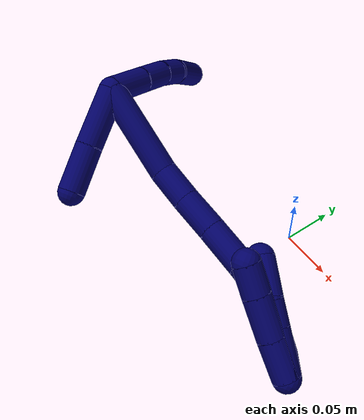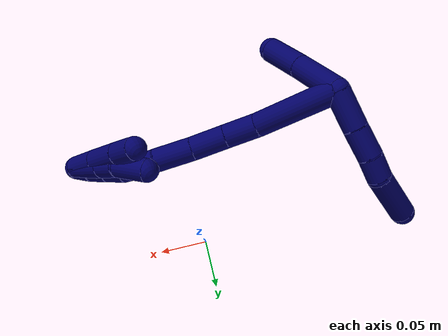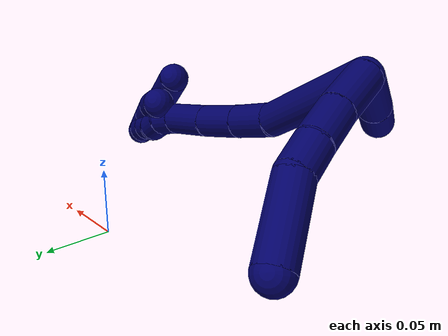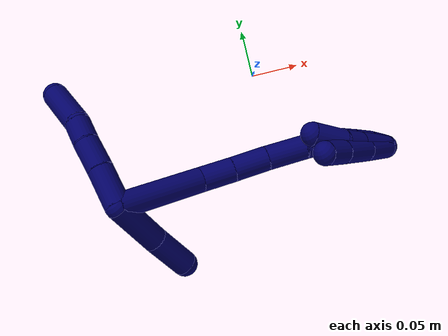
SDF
<sdf version="1.7">
 <world name="default">
  <model name="7">
   <static>0</static>
   <link name="7">
    <collision name="collision-cylinder-e_1_2_8">
     <pose>0.004269 0.014774 0.012706 -0.86051 0.215649 -0.099272</pose>
     <geometry><cylinder><radius>0.0125</radius><length>0.039898</length></cylinder></geometry>
     <surface>
      <friction><ode><mu>1.16</mu><mu2>1.16</mu2><slip1>0</slip1><slip2>0</slip2></ode></friction>
      <contact><ode><kp>1e+06</kp><kd>1</kd><max_vel>0</max_vel><min_depth>0.001</min_depth></ode></contact>
     </surface>
    </collision>
    <visual name="visual-cylinder-e_1_2_8">
     <pose>0.004269 0.014774 0.012706 -0.86051 0.215649 -0.099272</pose>
     <geometry><cylinder><radius>0.0125</radius><length>0.039898</length></cylinder></geometry>
     <material><ambient>0.003922 0 0.403922 1</ambient></material>
    </visual>
    <collision name="collision-cylinder-e_2_8_9">
     <pose>0.011179 0.041626 0.035018 -0.89891 0.169563 -0.081945</pose>
     <geometry><cylinder><radius>0.0125</radius><length>0.031312</length></cylinder></geometry>
     <surface>
      <friction><ode><mu>1.16</mu><mu2>1.16</mu2><slip1>0</slip1><slip2>0</slip2></ode></friction>
      <contact><ode><kp>1e+06</kp><kd>1</kd><max_vel>0</max_vel><min_depth>0.001</min_depth></ode></contact>
     </surface>
    </collision>
    <visual name="visual-cylinder-e_2_8_9">
     <pose>0.011179 0.041626 0.035018 -0.89891 0.169563 -0.081945</pose>
     <geometry><cylinder><radius>0.0125</radius><length>0.031312</length></cylinder></geometry>
     <material><ambient>0.003922 0 0.403922 1</ambient></material>
    </visual>
    <collision name="collision-cylinder-e_3_9_10">
     <pose>0.016129 0.06395 0.050895 -1.02158 0.189796 -0.106581</pose>
     <geometry><cylinder><radius>0.0125</radius><length>0.024463</length></cylinder></geometry>
     <surface>
      <friction><ode><mu>1.16</mu><mu2>1.16</mu2><slip1>0</slip1><slip2>0</slip2></ode></friction>
      <contact><ode><kp>1e+06</kp><kd>1</kd><max_vel>0</max_vel><min_depth>0.001</min_depth></ode></contact>
     </surface>
    </collision>
    <visual name="visual-cylinder-e_3_9_10">
     <pose>0.016129 0.06395 0.050895 -1.02158 0.189796 -0.106581</pose>
     <geometry><cylinder><radius>0.0125</radius><length>0.024463</length></cylinder></geometry>
     <material><ambient>0.003922 0 0.403922 1</ambient></material>
    </visual>
    <collision name="collision-cylinder-e_4_10_6">
     <pose>0.017147 0.099815 0.066099 -1.23525 -0.047501 0.033745</pose>
     <geometry><cylinder><radius>0.0125</radius><length>0.054326</length></cylinder></geometry>
     <surface>
      <friction><ode><mu>1.16</mu><mu2>1.16</mu2><slip1>0</slip1><slip2>0</slip2></ode></friction>
      <contact><ode><kp>1e+06</kp><kd>1</kd><max_vel>0</max_vel><min_depth>0.001</min_depth></ode></contact>
     </surface>
    </collision>
    <visual name="visual-cylinder-e_4_10_6">
     <pose>0.017147 0.099815 0.066099 -1.23525 -0.047501 0.033745</pose>
     <geometry><cylinder><radius>0.0125</radius><length>0.054326</length></cylinder></geometry>
     <material><ambient>0.003922 0 0.403922 1</ambient></material>
    </visual>
    <collision name="collision-cylinder-e_1_2_11">
     <pose>0.000121 0.00158 -0.027673 -3.08457 0.004356 -0.152438</pose>
     <geometry><cylinder><radius>0.0125</radius><length>0.055437</length></cylinder></geometry>
     <surface>
      <friction><ode><mu>1.16</mu><mu2>1.16</mu2><slip1>0</slip1><slip2>0</slip2></ode></friction>
      <contact><ode><kp>1e+06</kp><kd>1</kd><max_vel>0</max_vel><min_depth>0.001</min_depth></ode></contact>
     </surface>
    </collision>
    <visual name="visual-cylinder-e_1_2_11">
     <pose>0.000121 0.00158 -0.027673 -3.08457 0.004356 -0.152438</pose>
     <geometry><cylinder><radius>0.0125</radius><length>0.055437</length></cylinder></geometry>
     <material><ambient>0.003922 0 0.403922 1</ambient></material>
    </visual>
    <collision name="collision-cylinder-e_2_11_5">
     <pose>0.001509 0.003289 -0.077591 -3.13576 0.05691 -2.93748</pose>
     <geometry><cylinder><radius>0.0125</radius><length>0.044563</length></cylinder></geometry>
     <surface>
      <friction><ode><mu>1.16</mu><mu2>1.16</mu2><slip1>0</slip1><slip2>0</slip2></ode></friction>
      <contact><ode><kp>1e+06</kp><kd>1</kd><max_vel>0</max_vel><min_depth>0.001</min_depth></ode></contact>
     </surface>
    </collision>
    <visual name="visual-cylinder-e_2_11_5">
     <pose>0.001509 0.003289 -0.077591 -3.13576 0.05691 -2.93748</pose>
     <geometry><cylinder><radius>0.0125</radius><length>0.044563</length></cylinder></geometry>
     <material><ambient>0.003922 0 0.403922 1</ambient></material>
    </visual>
    <collision name="collision-cylinder-e_1_2_12">
     <pose>0.034805 0.01082 -0.025167 -2.73556 0.903994 -2.33958</pose>
     <geometry><cylinder><radius>0.0125</radius><length>0.088584</length></cylinder></geometry>
     <surface>
      <friction><ode><mu>1.16</mu><mu2>1.16</mu2><slip1>0</slip1><slip2>0</slip2></ode></friction>
      <contact><ode><kp>1e+06</kp><kd>1</kd><max_vel>0</max_vel><min_depth>0.001</min_depth></ode></contact>
     </surface>
    </collision>
    <visual name="visual-cylinder-e_1_2_12">
     <pose>0.034805 0.01082 -0.025167 -2.73556 0.903994 -2.33958</pose>
     <geometry><cylinder><radius>0.0125</radius><length>0.088584</length></cylinder></geometry>
     <material><ambient>0.003922 0 0.403922 1</ambient></material>
    </visual>
    <collision name="collision-cylinder-e_2_12_13">
     <pose>0.084677 0.02173 -0.058402 -3.13034 1.07908 -3.12279</pose>
     <geometry><cylinder><radius>0.0125</radius><length>0.034184</length></cylinder></geometry>
     <surface>
      <friction><ode><mu>1.16</mu><mu2>1.16</mu2><slip1>0</slip1><slip2>0</slip2></ode></friction>
      <contact><ode><kp>1e+06</kp><kd>1</kd><max_vel>0</max_vel><min_depth>0.001</min_depth></ode></contact>
     </surface>
    </collision>
    <visual name="visual-cylinder-e_2_12_13">
     <pose>0.084677 0.02173 -0.058402 -3.13034 1.07908 -3.12279</pose>
     <geometry><cylinder><radius>0.0125</radius><length>0.034184</length></cylinder></geometry>
     <material><ambient>0.003922 0 0.403922 1</ambient></material>
    </visual>
    <collision name="collision-cylinder-e_3_13_14">
     <pose>0.116078 0.02129 -0.074438 3.07504 1.11613 3.03505</pose>
     <geometry><cylinder><radius>0.0125</radius><length>0.036363</length></cylinder></geometry>
     <surface>
      <friction><ode><mu>1.16</mu><mu2>1.16</mu2><slip1>0</slip1><slip2>0</slip2></ode></friction>
      <contact><ode><kp>1e+06</kp><kd>1</kd><max_vel>0</max_vel><min_depth>0.001</min_depth></ode></contact>
     </surface>
    </collision>
    <visual name="visual-cylinder-e_3_13_14">
     <pose>0.116078 0.02129 -0.074438 3.07504 1.11613 3.03505</pose>
     <geometry><cylinder><radius>0.0125</radius><length>0.036363</length></cylinder></geometry>
     <material><ambient>0.003922 0 0.403922 1</ambient></material>
    </visual>
    <collision name="collision-cylinder-e_4_14_15">
     <pose>0.150505 0.019239 -0.091564 2.97717 1.0967 2.87342</pose>
     <geometry><cylinder><radius>0.0125</radius><length>0.040673</length></cylinder></geometry>
     <surface>
      <friction><ode><mu>1.16</mu><mu2>1.16</mu2><slip1>0</slip1><slip2>0</slip2></ode></friction>
      <contact><ode><kp>1e+06</kp><kd>1</kd><max_vel>0</max_vel><min_depth>0.001</min_depth></ode></contact>
     </surface>
    </collision>
    <visual name="visual-cylinder-e_4_14_15">
     <pose>0.150505 0.019239 -0.091564 2.97717 1.0967 2.87342</pose>
     <geometry><cylinder><radius>0.0125</radius><length>0.040673</length></cylinder></geometry>
     <material><ambient>0.003922 0 0.403922 1</ambient></material>
    </visual>
    <collision name="collision-cylinder-e_5_15_16">
     <pose>0.177401 0.018031 -0.105591 -3.07763 1.06474 -3.03309</pose>
     <geometry><cylinder><radius>0.0125</radius><length>0.020127</length></cylinder></geometry>
     <surface>
      <friction><ode><mu>1.16</mu><mu2>1.16</mu2><slip1>0</slip1><slip2>0</slip2></ode></friction>
      <contact><ode><kp>1e+06</kp><kd>1</kd><max_vel>0</max_vel><min_depth>0.001</min_depth></ode></contact>
     </surface>
    </collision>
    <visual name="visual-cylinder-e_5_15_16">
     <pose>0.177401 0.018031 -0.105591 -3.07763 1.06474 -3.03309</pose>
     <geometry><cylinder><radius>0.0125</radius><length>0.020127</length></cylinder></geometry>
     <material><ambient>0.003922 0 0.403922 1</ambient></material>
    </visual>
    <collision name="collision-cylinder-e_6_16_17">
     <pose>0.193309 0.020334 -0.117251 -2.85636 0.787411 -2.47595</pose>
     <geometry><cylinder><radius>0.0125</radius><length>0.020058</length></cylinder></geometry>
     <surface>
      <friction><ode><mu>1.16</mu><mu2>1.16</mu2><slip1>0</slip1><slip2>0</slip2></ode></friction>
      <contact><ode><kp>1e+06</kp><kd>1</kd><max_vel>0</max_vel><min_depth>0.001</min_depth></ode></contact>
     </surface>
    </collision>
    <visual name="visual-cylinder-e_6_16_17">
     <pose>0.193309 0.020334 -0.117251 -2.85636 0.787411 -2.47595</pose>
     <geometry><cylinder><radius>0.0125</radius><length>0.020058</length></cylinder></geometry>
     <material><ambient>0.003922 0 0.403922 1</ambient></material>
    </visual>
    <collision name="collision-cylinder-e_7_17_18">
     <pose>0.207151 0.020997 -0.131318 2.96094 0.738728 2.68193</pose>
     <geometry><cylinder><radius>0.0125</radius><length>0.020009</length></cylinder></geometry>
     <surface>
      <friction><ode><mu>1.16</mu><mu2>1.16</mu2><slip1>0</slip1><slip2>0</slip2></ode></friction>
      <contact><ode><kp>1e+06</kp><kd>1</kd><max_vel>0</max_vel><min_depth>0.001</min_depth></ode></contact>
     </surface>
    </collision>
    <visual name="visual-cylinder-e_7_17_18">
     <pose>0.207151 0.020997 -0.131318 2.96094 0.738728 2.68193</pose>
     <geometry><cylinder><radius>0.0125</radius><length>0.020009</length></cylinder></geometry>
     <material><ambient>0.003922 0 0.403922 1</ambient></material>
    </visual>
    <collision name="collision-cylinder-e_8_18_19">
     <pose>0.22022 0.019528 -0.146332 3.12357 0.685846 3.09112</pose>
     <geometry><cylinder><radius>0.0125</radius><length>0.02</length></cylinder></geometry>
     <surface>
      <friction><ode><mu>1.16</mu><mu2>1.16</mu2><slip1>0</slip1><slip2>0</slip2></ode></friction>
      <contact><ode><kp>1e+06</kp><kd>1</kd><max_vel>0</max_vel><min_depth>0.001</min_depth></ode></contact>
     </surface>
    </collision>
    <visual name="visual-cylinder-e_8_18_19">
     <pose>0.22022 0.019528 -0.146332 3.12357 0.685846 3.09112</pose>
     <geometry><cylinder><radius>0.0125</radius><length>0.02</length></cylinder></geometry>
     <material><ambient>0.003922 0 0.403922 1</ambient></material>
    </visual>
    <collision name="collision-cylinder-e_9_19_1">
     <pose>0.231942 0.018942 -0.162483 3.08854 0.568986 2.96064</pose>
     <geometry><cylinder><radius>0.0125</radius><length>0.020003</length></cylinder></geometry>
     <surface>
      <friction><ode><mu>1.16</mu><mu2>1.16</mu2><slip1>0</slip1><slip2>0</slip2></ode></friction>
      <contact><ode><kp>1e+06</kp><kd>1</kd><max_vel>0</max_vel><min_depth>0.001</min_depth></ode></contact>
     </surface>
    </collision>
    <visual name="visual-cylinder-e_9_19_1">
     <pose>0.231942 0.018942 -0.162483 3.08854 0.568986 2.96064</pose>
     <geometry><cylinder><radius>0.0125</radius><length>0.020003</length></cylinder></geometry>
     <material><ambient>0.003922 0 0.403922 1</ambient></material>
    </visual>
    <collision name="collision-cylinder-e_1_1_20">
     <pose>0.226342 0.012426 -0.15837 0.451187 -0.668265 -0.159006</pose>
     <geometry><cylinder><radius>0.0125</radius><length>0.03547</length></cylinder></geometry>
     <surface>
      <friction><ode><mu>1.16</mu><mu2>1.16</mu2><slip1>0</slip1><slip2>0</slip2></ode></friction>
      <contact><ode><kp>1e+06</kp><kd>1</kd><max_vel>0</max_vel><min_depth>0.001</min_depth></ode></contact>
     </surface>
    </collision>
    <visual name="visual-cylinder-e_1_1_20">
     <pose>0.226342 0.012426 -0.15837 0.451187 -0.668265 -0.159006</pose>
     <geometry><cylinder><radius>0.0125</radius><length>0.03547</length></cylinder></geometry>
     <material><ambient>0.003922 0 0.403922 1</ambient></material>
    </visual>
    <collision name="collision-cylinder-e_2_20_21">
     <pose>0.204209 -0.000213 -0.132269 0.450715 -0.636394 -0.15074</pose>
     <geometry><cylinder><radius>0.0125</radius><length>0.037502</length></cylinder></geometry>
     <surface>
      <friction><ode><mu>1.16</mu><mu2>1.16</mu2><slip1>0</slip1><slip2>0</slip2></ode></friction>
      <contact><ode><kp>1e+06</kp><kd>1</kd><max_vel>0</max_vel><min_depth>0.001</min_depth></ode></contact>
     </surface>
    </collision>
    <visual name="visual-cylinder-e_2_20_21">
     <pose>0.204209 -0.000213 -0.132269 0.450715 -0.636394 -0.15074</pose>
     <geometry><cylinder><radius>0.0125</radius><length>0.037502</length></cylinder></geometry>
     <material><ambient>0.003922 0 0.403922 1</ambient></material>
    </visual>
    <collision name="collision-cylinder-e_3_21_4">
     <pose>0.185224 -0.011489 -0.108746 0.44193 -0.619071 -0.143436</pose>
     <geometry><cylinder><radius>0.0125</radius><length>0.027028</length></cylinder></geometry>
     <surface>
      <friction><ode><mu>1.16</mu><mu2>1.16</mu2><slip1>0</slip1><slip2>0</slip2></ode></friction>
      <contact><ode><kp>1e+06</kp><kd>1</kd><max_vel>0</max_vel><min_depth>0.001</min_depth></ode></contact>
     </surface>
    </collision>
    <visual name="visual-cylinder-e_3_21_4">
     <pose>0.185224 -0.011489 -0.108746 0.44193 -0.619071 -0.143436</pose>
     <geometry><cylinder><radius>0.0125</radius><length>0.027028</length></cylinder></geometry>
     <material><ambient>0.003922 0 0.403922 1</ambient></material>
    </visual>
    <collision name="collision-cylinder-e_1_1_22">
     <pose>0.225938 0.013993 -0.154033 0.260862 -0.578276 -0.078003</pose>
     <geometry><cylinder><radius>0.0125</radius><length>0.041687</length></cylinder></geometry>
     <surface>
      <friction><ode><mu>1.16</mu><mu2>1.16</mu2><slip1>0</slip1><slip2>0</slip2></ode></friction>
      <contact><ode><kp>1e+06</kp><kd>1</kd><max_vel>0</max_vel><min_depth>0.001</min_depth></ode></contact>
     </surface>
    </collision>
    <visual name="visual-cylinder-e_1_1_22">
     <pose>0.225938 0.013993 -0.154033 0.260862 -0.578276 -0.078003</pose>
     <geometry><cylinder><radius>0.0125</radius><length>0.041687</length></cylinder></geometry>
     <material><ambient>0.003922 0 0.403922 1</ambient></material>
    </visual>
    <collision name="collision-cylinder-e_2_22_23">
     <pose>0.20813 0.007014 -0.1277 0.255901 -0.580243 -0.07678</pose>
     <geometry><cylinder><radius>0.0125</radius><length>0.023406</length></cylinder></geometry>
     <surface>
      <friction><ode><mu>1.16</mu><mu2>1.16</mu2><slip1>0</slip1><slip2>0</slip2></ode></friction>
      <contact><ode><kp>1e+06</kp><kd>1</kd><max_vel>0</max_vel><min_depth>0.001</min_depth></ode></contact>
     </surface>
    </collision>
    <visual name="visual-cylinder-e_2_22_23">
     <pose>0.20813 0.007014 -0.1277 0.255901 -0.580243 -0.07678</pose>
     <geometry><cylinder><radius>0.0125</radius><length>0.023406</length></cylinder></geometry>
     <material><ambient>0.003922 0 0.403922 1</ambient></material>
    </visual>
    <collision name="collision-cylinder-e_3_23_3">
     <pose>0.192003 0.006531 -0.103867 -0.137967 -0.590006 0.041984</pose>
     <geometry><cylinder><radius>0.0125</radius><length>0.034907</length></cylinder></geometry>
     <surface>
      <friction><ode><mu>1.16</mu><mu2>1.16</mu2><slip1>0</slip1><slip2>0</slip2></ode></friction>
      <contact><ode><kp>1e+06</kp><kd>1</kd><max_vel>0</max_vel><min_depth>0.001</min_depth></ode></contact>
     </surface>
    </collision>
    <visual name="visual-cylinder-e_3_23_3">
     <pose>0.192003 0.006531 -0.103867 -0.137967 -0.590006 0.041984</pose>
     <geometry><cylinder><radius>0.0125</radius><length>0.034907</length></cylinder></geometry>
     <material><ambient>0.003922 0 0.403922 1</ambient></material>
    </visual>
    <collision name="collision-sphere-3">
     <pose>0.182293 0.008526 -0.089502 0 -0 0</pose>
     <geometry><sphere><radius>0.0125</radius></sphere></geometry>
     <surface>
      <friction><ode><mu>1.16</mu><mu2>1.16</mu2><slip1>0</slip1><slip2>0</slip2></ode></friction>
      <contact><ode><kp>1e+06</kp><kd>1</kd><max_vel>0</max_vel><min_depth>0.001</min_depth></ode></contact>
     </surface>
    </collision>
    <visual name="visual-sphere-3">
     <pose>0.182293 0.008526 -0.089502 0 -0 0</pose>
     <geometry><sphere><radius>0.0125</radius></sphere></geometry>
     <material><ambient>0.003922 0 0.403922 1</ambient></material>
    </visual>
    <collision name="collision-sphere-23">
     <pose>0.201714 0.004537 -0.118232 0 -0 0</pose>
     <geometry><sphere><radius>0.0125</radius></sphere></geometry>
     <surface>
      <friction><ode><mu>1.16</mu><mu2>1.16</mu2><slip1>0</slip1><slip2>0</slip2></ode></friction>
      <contact><ode><kp>1e+06</kp><kd>1</kd><max_vel>0</max_vel><min_depth>0.001</min_depth></ode></contact>
     </surface>
    </collision>
    <visual name="visual-sphere-23">
     <pose>0.201714 0.004537 -0.118232 0 -0 0</pose>
     <geometry><sphere><radius>0.0125</radius></sphere></geometry>
     <material><ambient>0.003922 0 0.403922 1</ambient></material>
    </visual>
    <collision name="collision-sphere-22">
     <pose>0.214546 0.009492 -0.137169 0 -0 0</pose>
     <geometry><sphere><radius>0.0125</radius></sphere></geometry>
     <surface>
      <friction><ode><mu>1.16</mu><mu2>1.16</mu2><slip1>0</slip1><slip2>0</slip2></ode></friction>
      <contact><ode><kp>1e+06</kp><kd>1</kd><max_vel>0</max_vel><min_depth>0.001</min_depth></ode></contact>
     </surface>
    </collision>
    <visual name="visual-sphere-22">
     <pose>0.214546 0.009492 -0.137169 0 -0 0</pose>
     <geometry><sphere><radius>0.0125</radius></sphere></geometry>
     <material><ambient>0.003922 0 0.403922 1</ambient></material>
    </visual>
    <collision name="collision-sphere-4">
     <pose>0.177382 -0.016197 -0.098797 0 -0 0</pose>
     <geometry><sphere><radius>0.0125</radius></sphere></geometry>
     <surface>
      <friction><ode><mu>1.16</mu><mu2>1.16</mu2><slip1>0</slip1><slip2>0</slip2></ode></friction>
      <contact><ode><kp>1e+06</kp><kd>1</kd><max_vel>0</max_vel><min_depth>0.001</min_depth></ode></contact>
     </surface>
    </collision>
    <visual name="visual-sphere-4">
     <pose>0.177382 -0.016197 -0.098797 0 -0 0</pose>
     <geometry><sphere><radius>0.0125</radius></sphere></geometry>
     <material><ambient>0.003922 0 0.403922 1</ambient></material>
    </visual>
    <collision name="collision-sphere-21">
     <pose>0.193066 -0.006782 -0.118694 0 -0 0</pose>
     <geometry><sphere><radius>0.0125</radius></sphere></geometry>
     <surface>
      <friction><ode><mu>1.16</mu><mu2>1.16</mu2><slip1>0</slip1><slip2>0</slip2></ode></friction>
      <contact><ode><kp>1e+06</kp><kd>1</kd><max_vel>0</max_vel><min_depth>0.001</min_depth></ode></contact>
     </surface>
    </collision>
    <visual name="visual-sphere-21">
     <pose>0.193066 -0.006782 -0.118694 0 -0 0</pose>
     <geometry><sphere><radius>0.0125</radius></sphere></geometry>
     <material><ambient>0.003922 0 0.403922 1</ambient></material>
    </visual>
    <collision name="collision-sphere-20">
     <pose>0.215353 0.006356 -0.145843 0 -0 0</pose>
     <geometry><sphere><radius>0.0125</radius></sphere></geometry>
     <surface>
      <friction><ode><mu>1.16</mu><mu2>1.16</mu2><slip1>0</slip1><slip2>0</slip2></ode></friction>
      <contact><ode><kp>1e+06</kp><kd>1</kd><max_vel>0</max_vel><min_depth>0.001</min_depth></ode></contact>
     </surface>
    </collision>
    <visual name="visual-sphere-20">
     <pose>0.215353 0.006356 -0.145843 0 -0 0</pose>
     <geometry><sphere><radius>0.0125</radius></sphere></geometry>
     <material><ambient>0.003922 0 0.403922 1</ambient></material>
    </visual>
    <collision name="collision-sphere-11">
     <pose>0.000241 0.003159 -0.055346 0 -0 0</pose>
     <geometry><sphere><radius>0.0125</radius></sphere></geometry>
     <surface>
      <friction><ode><mu>1.16</mu><mu2>1.16</mu2><slip1>0</slip1><slip2>0</slip2></ode></friction>
      <contact><ode><kp>1e+06</kp><kd>1</kd><max_vel>0</max_vel><min_depth>0.001</min_depth></ode></contact>
     </surface>
    </collision>
    <visual name="visual-sphere-11">
     <pose>0.000241 0.003159 -0.055346 0 -0 0</pose>
     <geometry><sphere><radius>0.0125</radius></sphere></geometry>
     <material><ambient>0.003922 0 0.403922 1</ambient></material>
    </visual>
    <collision name="collision-sphere-6">
     <pose>0.015857 0.125434 0.075034 0 -0 0</pose>
     <geometry><sphere><radius>0.0125</radius></sphere></geometry>
     <surface>
      <friction><ode><mu>1.16</mu><mu2>1.16</mu2><slip1>0</slip1><slip2>0</slip2></ode></friction>
      <contact><ode><kp>1e+06</kp><kd>1</kd><max_vel>0</max_vel><min_depth>0.001</min_depth></ode></contact>
     </surface>
    </collision>
    <visual name="visual-sphere-6">
     <pose>0.015857 0.125434 0.075034 0 -0 0</pose>
     <geometry><sphere><radius>0.0125</radius></sphere></geometry>
     <material><ambient>0.003922 0 0.403922 1</ambient></material>
    </visual>
    <collision name="collision-sphere-10">
     <pose>0.018437 0.074195 0.057165 0 -0 0</pose>
     <geometry><sphere><radius>0.0125</radius></sphere></geometry>
     <surface>
      <friction><ode><mu>1.16</mu><mu2>1.16</mu2><slip1>0</slip1><slip2>0</slip2></ode></friction>
      <contact><ode><kp>1e+06</kp><kd>1</kd><max_vel>0</max_vel><min_depth>0.001</min_depth></ode></contact>
     </surface>
    </collision>
    <visual name="visual-sphere-10">
     <pose>0.018437 0.074195 0.057165 0 -0 0</pose>
     <geometry><sphere><radius>0.0125</radius></sphere></geometry>
     <material><ambient>0.003922 0 0.403922 1</ambient></material>
    </visual>
    <collision name="collision-sphere-9">
     <pose>0.013821 0.053704 0.044624 0 -0 0</pose>
     <geometry><sphere><radius>0.0125</radius></sphere></geometry>
     <surface>
      <friction><ode><mu>1.16</mu><mu2>1.16</mu2><slip1>0</slip1><slip2>0</slip2></ode></friction>
      <contact><ode><kp>1e+06</kp><kd>1</kd><max_vel>0</max_vel><min_depth>0.001</min_depth></ode></contact>
     </surface>
    </collision>
    <visual name="visual-sphere-9">
     <pose>0.013821 0.053704 0.044624 0 -0 0</pose>
     <geometry><sphere><radius>0.0125</radius></sphere></geometry>
     <material><ambient>0.003922 0 0.403922 1</ambient></material>
    </visual>
    <collision name="collision-sphere-2">
     <geometry><sphere><radius>0.0125</radius></sphere></geometry>
     <surface>
      <friction><ode><mu>1.16</mu><mu2>1.16</mu2><slip1>0</slip1><slip2>0</slip2></ode></friction>
      <contact><ode><kp>1e+06</kp><kd>1</kd><max_vel>0</max_vel><min_depth>0.001</min_depth></ode></contact>
     </surface>
    </collision>
    <visual name="visual-sphere-2">
     <geometry><sphere><radius>0.0125</radius></sphere></geometry>
     <material><ambient>0.003922 0 0.403922 1</ambient></material>
    </visual>
    <collision name="collision-sphere-19">
     <pose>0.226554 0.019389 -0.154069 0 -0 0</pose>
     <geometry><sphere><radius>0.0125</radius></sphere></geometry>
     <surface>
      <friction><ode><mu>1.16</mu><mu2>1.16</mu2><slip1>0</slip1><slip2>0</slip2></ode></friction>
      <contact><ode><kp>1e+06</kp><kd>1</kd><max_vel>0</max_vel><min_depth>0.001</min_depth></ode></contact>
     </surface>
    </collision>
    <visual name="visual-sphere-19">
     <pose>0.226554 0.019389 -0.154069 0 -0 0</pose>
     <geometry><sphere><radius>0.0125</radius></sphere></geometry>
     <material><ambient>0.003922 0 0.403922 1</ambient></material>
    </visual>
    <collision name="collision-sphere-8">
     <pose>0.008537 0.029549 0.025413 0 -0 0</pose>
     <geometry><sphere><radius>0.0125</radius></sphere></geometry>
     <surface>
      <friction><ode><mu>1.16</mu><mu2>1.16</mu2><slip1>0</slip1><slip2>0</slip2></ode></friction>
      <contact><ode><kp>1e+06</kp><kd>1</kd><max_vel>0</max_vel><min_depth>0.001</min_depth></ode></contact>
     </surface>
    </collision>
    <visual name="visual-sphere-8">
     <pose>0.008537 0.029549 0.025413 0 -0 0</pose>
     <geometry><sphere><radius>0.0125</radius></sphere></geometry>
     <material><ambient>0.003922 0 0.403922 1</ambient></material>
    </visual>
    <collision name="collision-sphere-5">
     <pose>0.002776 0.003419 -0.099836 0 -0 0</pose>
     <geometry><sphere><radius>0.0125</radius></sphere></geometry>
     <surface>
      <friction><ode><mu>1.16</mu><mu2>1.16</mu2><slip1>0</slip1><slip2>0</slip2></ode></friction>
      <contact><ode><kp>1e+06</kp><kd>1</kd><max_vel>0</max_vel><min_depth>0.001</min_depth></ode></contact>
     </surface>
    </collision>
    <visual name="visual-sphere-5">
     <pose>0.002776 0.003419 -0.099836 0 -0 0</pose>
     <geometry><sphere><radius>0.0125</radius></sphere></geometry>
     <material><ambient>0.003922 0 0.403922 1</ambient></material>
    </visual>
    <collision name="collision-sphere-12">
     <pose>0.06961 0.021639 -0.050333 0 -0 0</pose>
     <geometry><sphere><radius>0.0125</radius></sphere></geometry>
     <surface>
      <friction><ode><mu>1.16</mu><mu2>1.16</mu2><slip1>0</slip1><slip2>0</slip2></ode></friction>
      <contact><ode><kp>1e+06</kp><kd>1</kd><max_vel>0</max_vel><min_depth>0.001</min_depth></ode></contact>
     </surface>
    </collision>
    <visual name="visual-sphere-12">
     <pose>0.06961 0.021639 -0.050333 0 -0 0</pose>
     <geometry><sphere><radius>0.0125</radius></sphere></geometry>
     <material><ambient>0.003922 0 0.403922 1</ambient></material>
    </visual>
    <collision name="collision-sphere-13">
     <pose>0.099744 0.021821 -0.066472 0 -0 0</pose>
     <geometry><sphere><radius>0.0125</radius></sphere></geometry>
     <surface>
      <friction><ode><mu>1.16</mu><mu2>1.16</mu2><slip1>0</slip1><slip2>0</slip2></ode></friction>
      <contact><ode><kp>1e+06</kp><kd>1</kd><max_vel>0</max_vel><min_depth>0.001</min_depth></ode></contact>
     </surface>
    </collision>
    <visual name="visual-sphere-13">
     <pose>0.099744 0.021821 -0.066472 0 -0 0</pose>
     <geometry><sphere><radius>0.0125</radius></sphere></geometry>
     <material><ambient>0.003922 0 0.403922 1</ambient></material>
    </visual>
    <collision name="collision-sphere-14">
     <pose>0.132412 0.020759 -0.082405 0 -0 0</pose>
     <geometry><sphere><radius>0.0125</radius></sphere></geometry>
     <surface>
      <friction><ode><mu>1.16</mu><mu2>1.16</mu2><slip1>0</slip1><slip2>0</slip2></ode></friction>
      <contact><ode><kp>1e+06</kp><kd>1</kd><max_vel>0</max_vel><min_depth>0.001</min_depth></ode></contact>
     </surface>
    </collision>
    <visual name="visual-sphere-14">
     <pose>0.132412 0.020759 -0.082405 0 -0 0</pose>
     <geometry><sphere><radius>0.0125</radius></sphere></geometry>
     <material><ambient>0.003922 0 0.403922 1</ambient></material>
    </visual>
    <collision name="collision-sphere-15">
     <pose>0.168599 0.017719 -0.100723 0 -0 0</pose>
     <geometry><sphere><radius>0.0125</radius></sphere></geometry>
     <surface>
      <friction><ode><mu>1.16</mu><mu2>1.16</mu2><slip1>0</slip1><slip2>0</slip2></ode></friction>
      <contact><ode><kp>1e+06</kp><kd>1</kd><max_vel>0</max_vel><min_depth>0.001</min_depth></ode></contact>
     </surface>
    </collision>
    <visual name="visual-sphere-15">
     <pose>0.168599 0.017719 -0.100723 0 -0 0</pose>
     <geometry><sphere><radius>0.0125</radius></sphere></geometry>
     <material><ambient>0.003922 0 0.403922 1</ambient></material>
    </visual>
    <collision name="collision-sphere-16">
     <pose>0.186203 0.018343 -0.110459 0 -0 0</pose>
     <geometry><sphere><radius>0.0125</radius></sphere></geometry>
     <surface>
      <friction><ode><mu>1.16</mu><mu2>1.16</mu2><slip1>0</slip1><slip2>0</slip2></ode></friction>
      <contact><ode><kp>1e+06</kp><kd>1</kd><max_vel>0</max_vel><min_depth>0.001</min_depth></ode></contact>
     </surface>
    </collision>
    <visual name="visual-sphere-16">
     <pose>0.186203 0.018343 -0.110459 0 -0 0</pose>
     <geometry><sphere><radius>0.0125</radius></sphere></geometry>
     <material><ambient>0.003922 0 0.403922 1</ambient></material>
    </visual>
    <collision name="collision-sphere-17">
     <pose>0.200414 0.022326 -0.124042 0 -0 0</pose>
     <geometry><sphere><radius>0.0125</radius></sphere></geometry>
     <surface>
      <friction><ode><mu>1.16</mu><mu2>1.16</mu2><slip1>0</slip1><slip2>0</slip2></ode></friction>
      <contact><ode><kp>1e+06</kp><kd>1</kd><max_vel>0</max_vel><min_depth>0.001</min_depth></ode></contact>
     </surface>
    </collision>
    <visual name="visual-sphere-17">
     <pose>0.200414 0.022326 -0.124042 0 -0 0</pose>
     <geometry><sphere><radius>0.0125</radius></sphere></geometry>
     <material><ambient>0.003922 0 0.403922 1</ambient></material>
    </visual>
    <collision name="collision-sphere-18">
     <pose>0.213887 0.019668 -0.138594 0 -0 0</pose>
     <geometry><sphere><radius>0.0125</radius></sphere></geometry>
     <surface>
      <friction><ode><mu>1.16</mu><mu2>1.16</mu2><slip1>0</slip1><slip2>0</slip2></ode></friction>
      <contact><ode><kp>1e+06</kp><kd>1</kd><max_vel>0</max_vel><min_depth>0.001</min_depth></ode></contact>
     </surface>
    </collision>
    <visual name="visual-sphere-18">
     <pose>0.213887 0.019668 -0.138594 0 -0 0</pose>
     <geometry><sphere><radius>0.0125</radius></sphere></geometry>
     <material><ambient>0.003922 0 0.403922 1</ambient></material>
    </visual>
    <collision name="collision-sphere-1">
     <pose>0.237331 0.018495 -0.170897 0 -0 0</pose>
     <geometry><sphere><radius>0.0125</radius></sphere></geometry>
     <surface>
      <friction><ode><mu>1.16</mu><mu2>1.16</mu2><slip1>0</slip1><slip2>0</slip2></ode></friction>
      <contact><ode><kp>1e+06</kp><kd>1</kd><max_vel>0</max_vel><min_depth>0.001</min_depth></ode></contact>
     </surface>
    </collision>
    <visual name="visual-sphere-1">
     <pose>0.237331 0.018495 -0.170897 0 -0 0</pose>
     <geometry><sphere><radius>0.0125</radius></sphere></geometry>
     <material><ambient>0.003922 0 0.403922 1</ambient></material>
    </visual>
    <inertial>
     <pose>0.107417 0.020573 -0.065391 0 -0 0</pose>
     <mass>0.75</mass>
     <inertia><ixx>-3e-06</ixx><ixy>0</ixy><ixz>0</ixz><iyy>8.5e-05</iyy><iyz>0</iyz><izz>-9.2e-05</izz></inertia>
    </inertial>
   </link>
   <pose>-0.155106 -0.097781 0.133892 -1.03613 0.011525 0.487042</pose>
  </model>
 </world>
</sdf>
